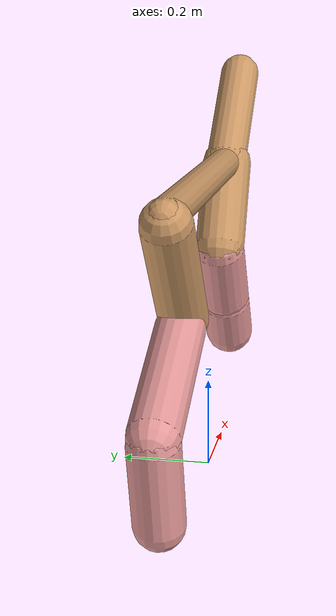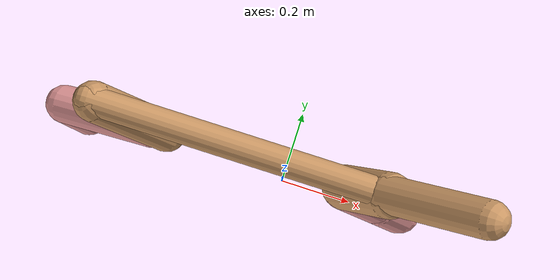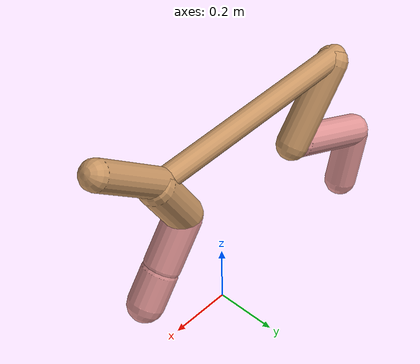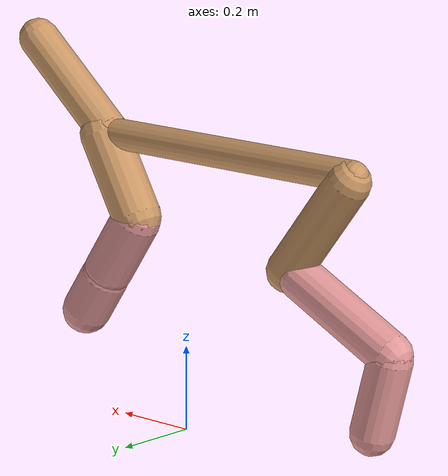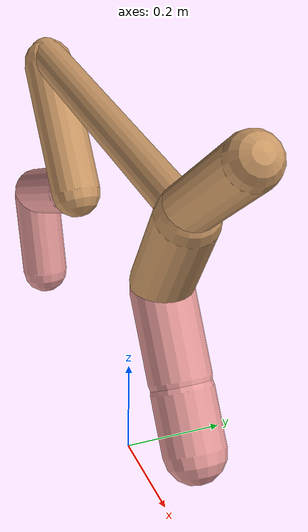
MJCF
<mujoco model="cheetah">
  <compiler angle="radian" coordinate="local" inertiafromgeom="true" settotalmass="14" />
  <default>
    <joint armature=".1" damping=".01" limited="true" solimplimit="0 .8 .03" solreflimit=".02 1" stiffness="8" />
    <geom conaffinity="0" condim="3" contype="1" friction="0.8 .1 .1" rgba="0.8 0.6 .4 1" solimp="0.0 0.8 0.01" solref="0.02 1" />
    <motor ctrllimited="true" ctrlrange="-1 1" />
  </default>
  <size nstack="300000" nuser_geom="1" />
  <option gravity="0 0 -9.81" timestep="0.01" />
  <worldbody>
    <body name="torso" pos="0.0 0.0 0.6713860510623604">
      <joint armature="0" axis="1 0 0" damping="0" limited="false" name="ignorex" pos="0 0 0" stiffness="0" type="slide" />
      <joint armature="0" axis="0 0 1" damping="0" limited="false" name="ignorez" pos="0 0 0" stiffness="0" type="slide" />
      <joint armature="0" axis="0 1 0" damping="0" limited="false" name="ignorey" pos="0 0 0" stiffness="0" type="hinge" />
      <geom fromto="-0.5 0.0 0.0 0.26711406359857454 0.0 0.0" name="torso" size="0.0360428367528057" type="capsule" />
      <geom axisangle="0 1 0 .87" name="head" pos="0.36711406359857446 0.0 0.1" size="0.04748518775904484 0.15" type="capsule" />

      <body name="bthigh" pos="-.5 0 0">
        <joint axis="0 1 0" damping="6" name="bthigh" pos="0 0 0" range="-.52 1.05" stiffness="240" type="hinge" />
        <geom axisangle="0 1 0 -3.8" name="bthigh" pos="0.0978561832849458 0.0 -0.12721303827042954" size="0.05101678535593205 0.141483879155968" type="capsule" />
        <body name="bshin" pos="0.1557123665698916 0.0 -0.24442607654085907">
          <joint axis="0 1 0" damping="4.5" name="bshin" pos="0 0 0" range="-.785 .785" stiffness="180" type="hinge" />
          <geom axisangle="0 1 0 -2.03" name="bshin" pos="-0.1367466405968168 0.0 -0.0683733202984084" rgba="0.9 0.6 0.6 1" size="0.05101678535593205 0.14636263360962207" type="capsule" />
          <body name="bfoot" pos="-0.2734932811936336 0.0 -0.1367466405968168">
            <joint axis="0 1 0" damping="3" name="bfoot" pos="0 0 0" range="-.4 .785" stiffness="120" type="hinge" />
            <geom axisangle="0 1 0 -.27" name="bfoot" pos="0.0293265015058939 0.0 -0.09482235486905696" rgba="0.9 0.6 0.6 1" size="0.05101678535593205 0.0917205837286965" type="capsule" />
            <inertial mass="10" />
          </body>
        </body>
      </body>
      <body name="fthigh" pos="0.2671140635985745 0.0 0.0">
        <joint axis="0 1 0" damping="4.5" name="fthigh" pos="0 0 0" range="-1.5 0.8" stiffness="180" type="hinge" />
        <geom axisangle="0 1 0 .52" name="fthigh" pos="-0.05605391544060091 0.0 -0.09609242646960155" size="0.057945331781459525 0.1053221144837739" type="capsule" />
        <body name="fshin" pos="-0.11210783088120183 0.0 -0.1921848529392031">
          <joint axis="0 1 0" damping="3" name="fshin" pos="0 0 0" range="-1.2 1.1" stiffness="120" type="hinge" />
          <geom axisangle="0 1 0 -.6" name="fshin" pos="0.05208462484861344 0.0 -0.07211717286731091" rgba="0.9 0.6 0.6 1" size="0.057945331781459525 0.08394093334797018" type="capsule" />
          <body name="ffoot" pos="0.10416924969722688 0.0 -0.14423434573462182">
            <joint axis="0 1 0" damping="1.5" name="ffoot" pos="0 0 0" range="-3.1 -0.3" stiffness="60" type="hinge" />
            <geom axisangle="0 1 0 -.6" name="ffoot" pos="0.037122617523997266 0.0 -0.057746293926217974" rgba="0.9 0.6 0.6 1" size="0.057945331781459525 0.055432691833565216" type="capsule" />
            <inertial mass="10" />
          </body>
        </body>
      </body>
    </body>
  </worldbody>
  <actuator>
    <motor gear="120" joint="bthigh" name="bthigh" />
    <motor gear="90" joint="bshin" name="bshin" />
    <motor gear="60" joint="bfoot" name="bfoot" />
    <motor gear="120" joint="fthigh" name="fthigh" />
    <motor gear="60" joint="fshin" name="fshin" />
    <motor gear="30" joint="ffoot" name="ffoot" />
  </actuator>
</mujoco>
